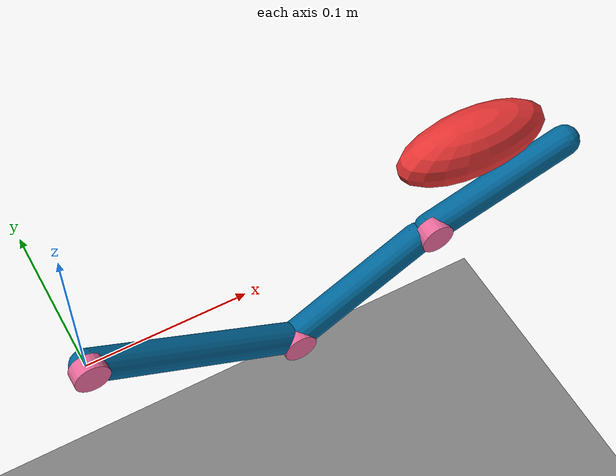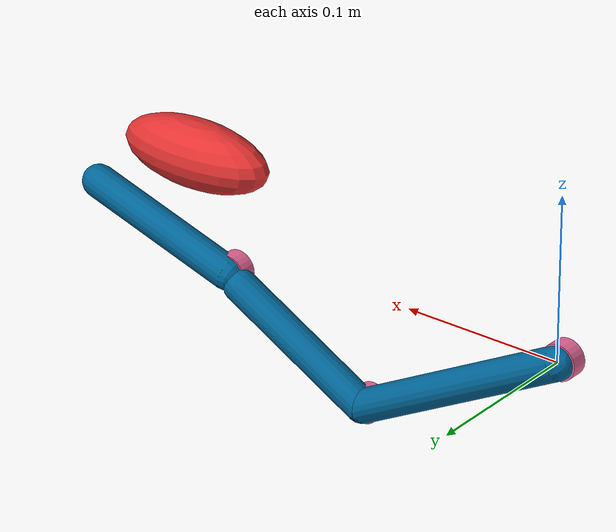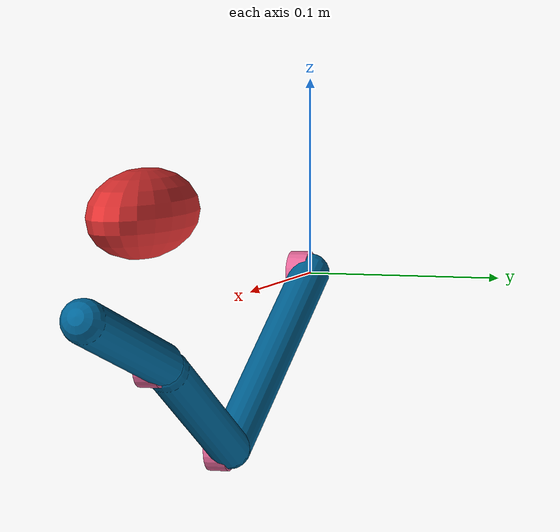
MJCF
<mujoco model="reacher">
	<compiler angle="radian" inertiafromgeom="true"/>
	<default>
		<joint armature="0.01" damping="0.1" limited="true"/>
	</default>
	<option gravity="0 0 -9.81" timestep="0.01"/>
	<worldbody>
		<!-- Arena -->
        <geom name="ground" pos="0 0 -0.5" size="1 1 1" type="plane" euler='0 0 0'/>

		<!-- Arm -->
		<body name="body0" pos="0 0 0" euler='0 0.5 0'>
            <geom fromto="0 0 0 0 -0.01 0" name="jnt0" rgba="0.9 0.4 0.6 1" size=".011" type="cylinder"/>
			<geom fromto="0 0 0 0.15 0 0" name="link0" rgba="0.0 0.4 0.6 1" size=".01" type="capsule"/>
			<body name="body1" pos="0.15 0 0" euler='0 -1 0'>
                <geom fromto="0 0 0 0 -0.01 0" name="jnt1" rgba="0.9 0.4 0.6 1" size=".011" type="cylinder"/>
				<joint axis="0 1 0" limited="true" name="joint1" pos="0 0 0" range="0 1.0" type="hinge"/>
				<geom fromto="0 0 0 0.1 0 0" name="link1" rgba="0.0 0.4 0.6 1" size=".01" type="capsule"/>
				<body name="fingertip" pos="0.11 0 0" euler='0 0.2 0'>
                    <geom fromto="0 0 0 0 -0.01 0" name="jnt2" rgba="0.9 0.4 0.6 1" size=".011" type="cylinder"/>
                    <geom fromto="0 0 0 0.1 0 0" name="link2" rgba="0.0 0.4 0.6 1" size=".01" type="capsule"/>
                    <joint axis="0 1 0" limited="true" name="joint2" pos="0 0 0" range="-0.4 0.4" type="hinge"/>
				</body>
			</body>
		</body>
		<!-- Target -->
		<body name="target" pos="0.25 0 0.05" euler='0 0 0'>
			<joint armature="0" axis="1 0 0"  limited="false" name="target_x" pos="0 0 0"  type="slide"/>
			<joint armature="0" axis="0 0 1"  limited="false" name="target_y" pos="0 0 0" type="slide"/>
            <joint armature="0" axis="0 1 0"  limited="false" name="target_z" pos="0 0 0" type="hinge"/>

			<geom name="target" pos="0 0 0" rgba="0.9 0.2 0.2 1" size=".05 0.02 0.02" type="ellipsoid"/>
		</body>

	</worldbody>
	<actuator>
		<motor ctrllimited="true" ctrlrange="-1.0 1.0" gear="200.0" joint="joint1"/>
	</actuator>
</mujoco>
